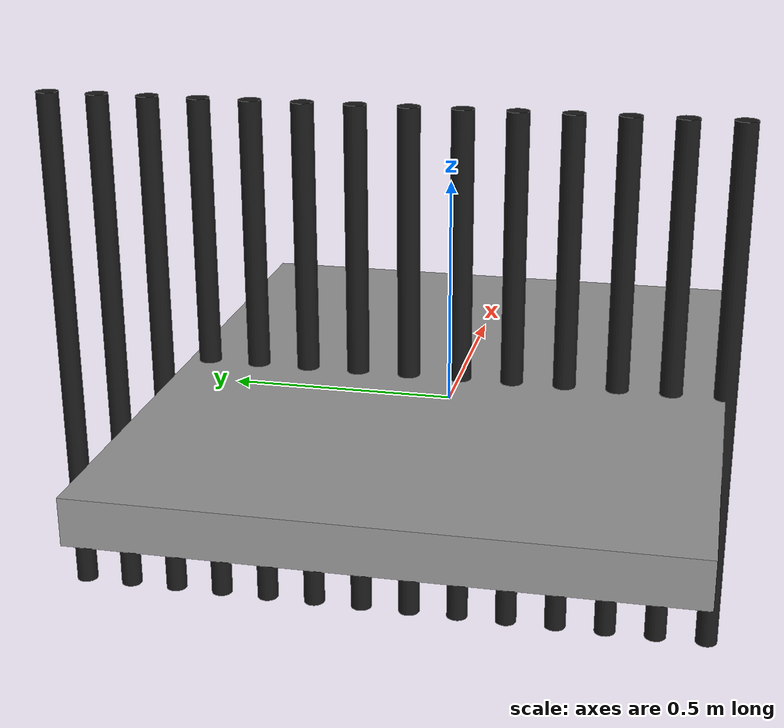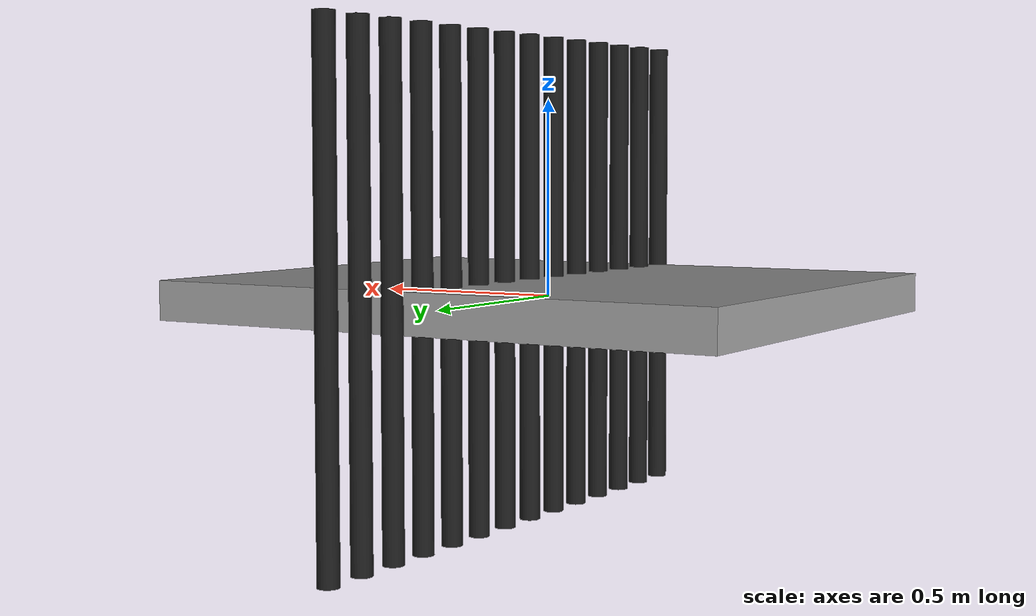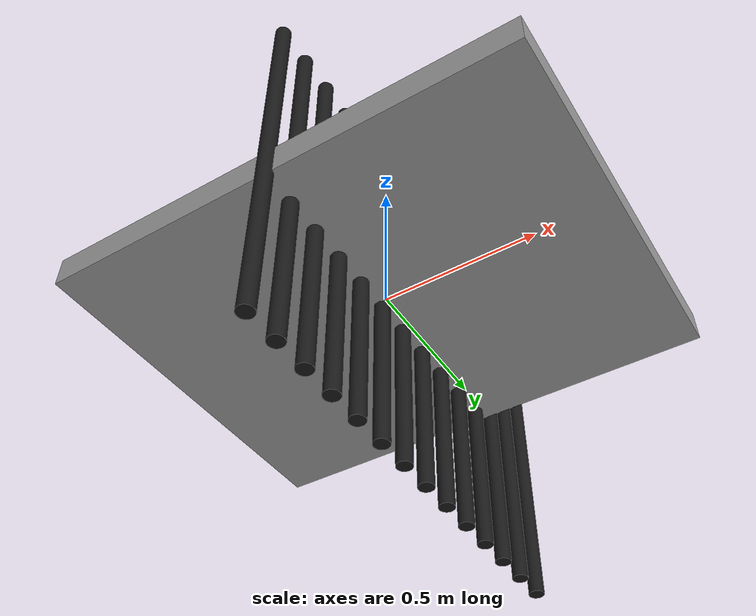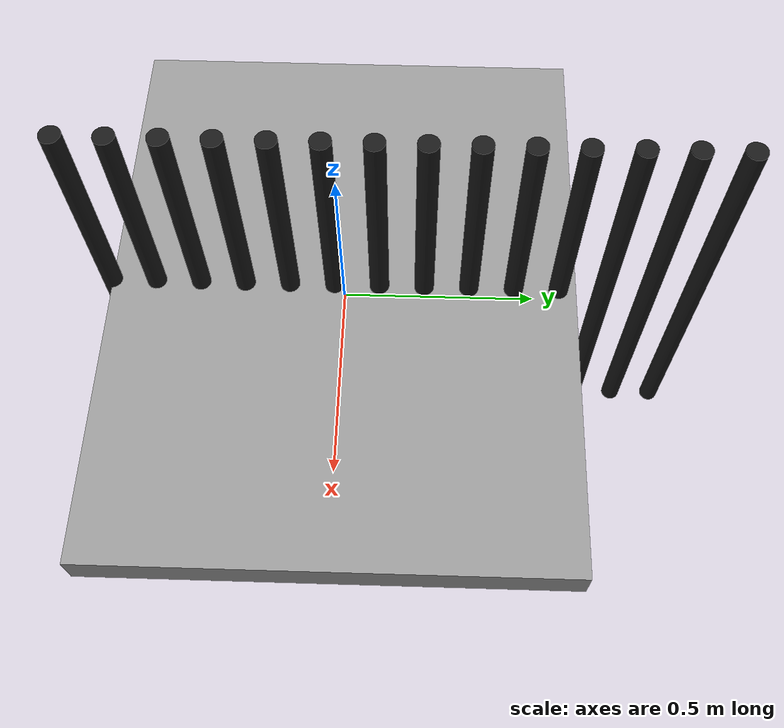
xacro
<?xml version="1.0" ?>
<robot name="roller_conveyor" xmlns:xacro="http://www.ros.org/wiki/xacro">

    <!-- Parameters -->
    <xacro:property name="roller_diameter" value="0.0508"/> <!-- 50.8mm -->
    <xacro:property name="roller_length" value="1.219"/>   <!-- 4ft -->
    <xacro:property name="conveyor_length" value="1.524"/> <!-- 5ft -->
    <xacro:property name="conveyor_width" value="1.219"/>  <!-- 4ft -->
    <xacro:property name="roller_count" value="14"/>
    <xacro:property name="roller_spacing" value="${conveyor_length / (roller_count - 1)}"/>

    <!-- Base Frame -->
    <link name="base_link">
        <visual>
            <geometry>
                <box size="${conveyor_length} ${conveyor_width} 0.1"/>
            </geometry>
            <material name="gray">
                <color rgba="0.6 0.6 0.6 1.0"/>
            </material>
        </visual>
        <collision>
            <geometry>
                <box size="${conveyor_length} ${conveyor_width} 0.1"/>
            </geometry>
        </collision>
        <inertial>
            <mass value="20.0"/>
            <inertia ixx="0.2" iyy="0.2" izz="0.2"/>
        </inertial>
    </link>

    <!-- Macro for Roller -->
    <xacro:macro name="roller" params="index pos_y">
        <link name="roller_${index}">
            <visual>
                <geometry>
                    <cylinder radius="${roller_diameter / 2}" length="${roller_length}"/>
                </geometry>
                <material name="black">
                    <color rgba="0.1 0.1 0.1 1.0"/>
                </material>
            </visual>
            <collision>
                <geometry>
                    <cylinder radius="${roller_diameter / 2}" length="${roller_length}"/>
                </geometry>
            </collision>
            <inertial>
                <mass value="2.0"/>
                <inertia ixx="0.02" iyy="0.02" izz="0.02"/>
            </inertial>
        </link>

        <joint name="roller_${index}_joint" type="continuous">
            <parent link="base_link"/>
            <child link="roller_${index}"/>
            <origin xyz="0 ${pos_y} 0.05" rpy="0 0 0"/>
            <axis xyz="1 0 0"/>
            <dynamics damping="0.1" friction="0.2"/>
        </joint>
    </xacro:macro>

    <!-- Generate 14 Rollers -->
    <xacro:roller index="1" pos_y="${-conveyor_width / 2 + 0 * roller_spacing}"/>
    <xacro:roller index="2" pos_y="${-conveyor_width / 2 + 1 * roller_spacing}"/>
    <xacro:roller index="3" pos_y="${-conveyor_width / 2 + 2 * roller_spacing}"/>
    <xacro:roller index="4" pos_y="${-conveyor_width / 2 + 3 * roller_spacing}"/>
    <xacro:roller index="5" pos_y="${-conveyor_width / 2 + 4 * roller_spacing}"/>
    <xacro:roller index="6" pos_y="${-conveyor_width / 2 + 5 * roller_spacing}"/>
    <xacro:roller index="7" pos_y="${-conveyor_width / 2 + 6 * roller_spacing}"/>
    <xacro:roller index="8" pos_y="${-conveyor_width / 2 + 7 * roller_spacing}"/>
    <xacro:roller index="9" pos_y="${-conveyor_width / 2 + 8 * roller_spacing}"/>
    <xacro:roller index="10" pos_y="${-conveyor_width / 2 + 9 * roller_spacing}"/>
    <xacro:roller index="11" pos_y="${-conveyor_width / 2 + 10 * roller_spacing}"/>
    <xacro:roller index="12" pos_y="${-conveyor_width / 2 + 11 * roller_spacing}"/>
    <xacro:roller index="13" pos_y="${-conveyor_width / 2 + 12 * roller_spacing}"/>
    <xacro:roller index="14" pos_y="${-conveyor_width / 2 + 13 * roller_spacing}"/>

</robot>
